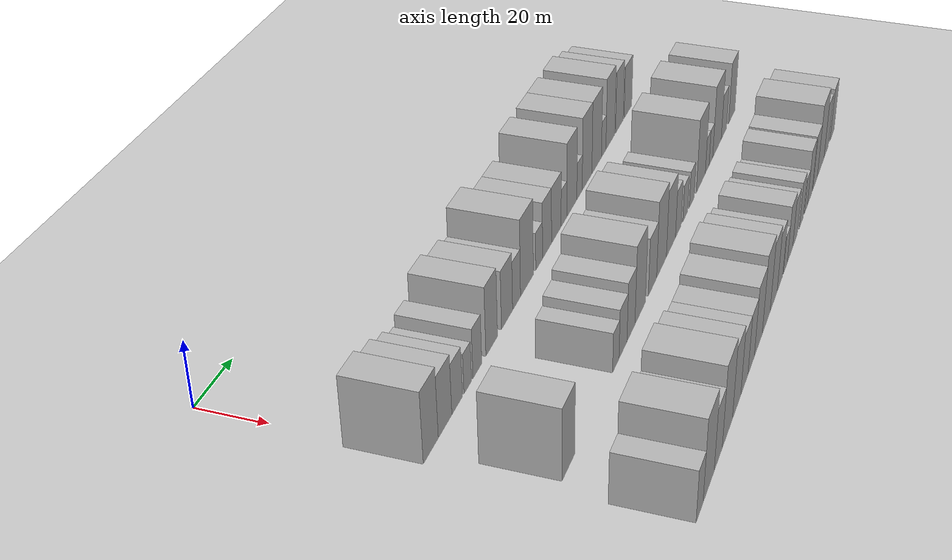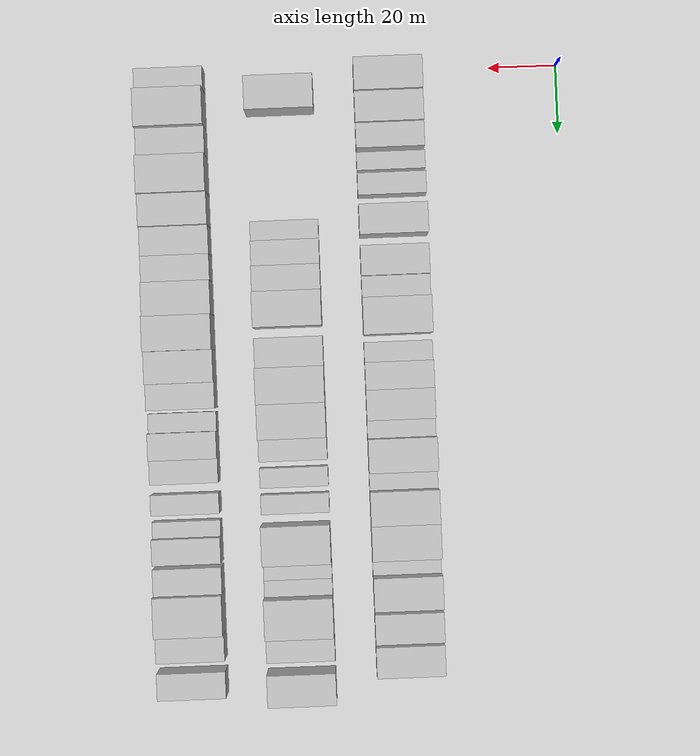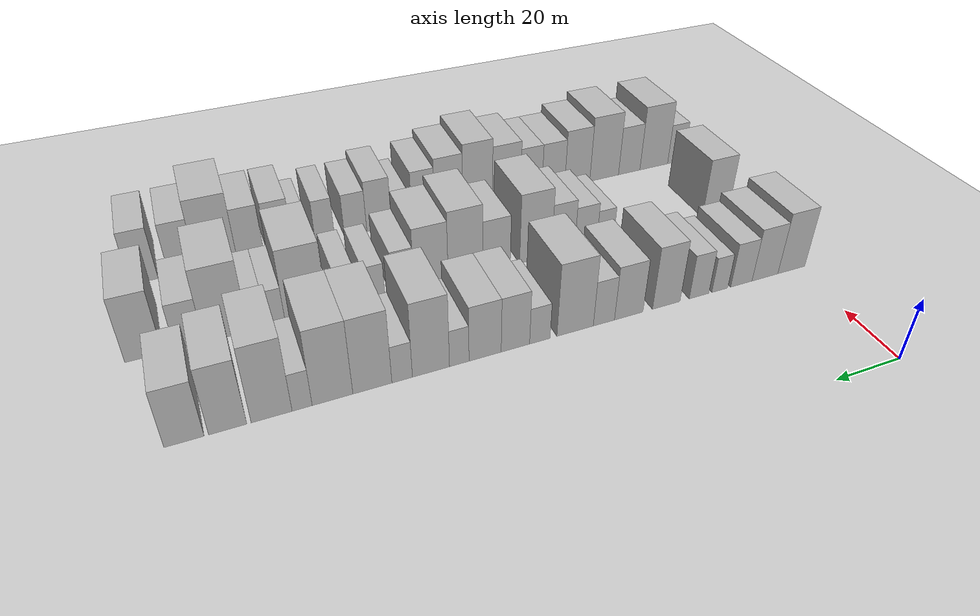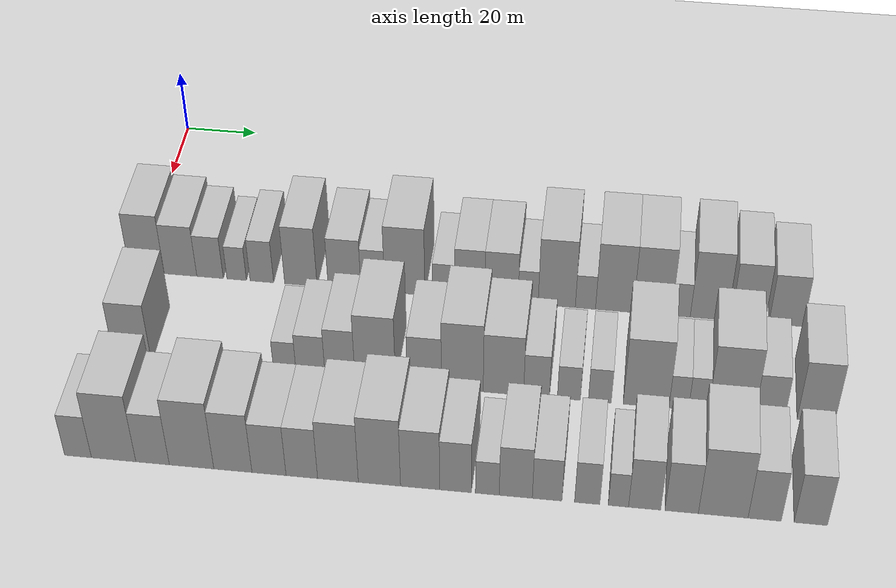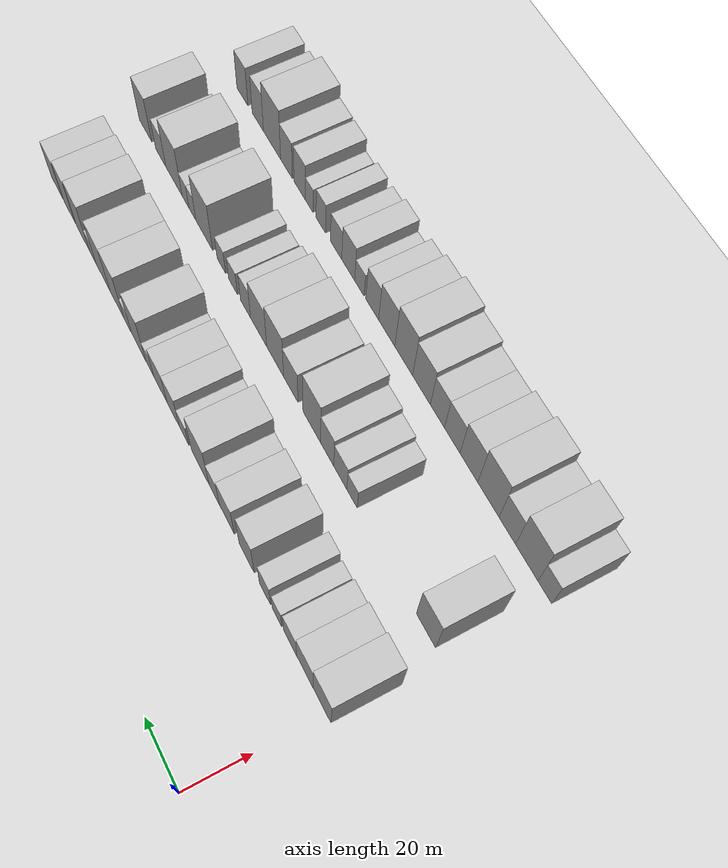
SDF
<sdf version="1.6">
 <world name="default">
  <include>
   <name>ground_plane_2</name>
   <uri>model://HANNAS_ground_plane</uri>
   <pose>100 0 0  0 0 0</pose>
  </include>
  <model name="building_40">
   <static>1</static>
   <pose>50.0000 2.4030 0 0.000000 0.000000 0.000000</pose>
   <link name="link">
    <pose>0 0 10.50 0 0 0</pose>
    <collision name="collision"><geometry><box><size>20.0000 9.5587 21.0000</size></box></geometry></collision>
    <visual name="visual">
     <cast_shadows>0</cast_shadows>
     <geometry><box><size>20.0000 9.5587 21.0000</size></box></geometry>
     <material>
      <script>
       <uri>model://HANNAS_wall/materials/scripts</uri>
       <uri>model://HANNAS_wall/materials/textures</uri>
       <name>vrc/HANNAS_wall</name>
      </script>
     </material>
    </visual>
   </link>
  </model>
  <model name="building_41">
   <static>1</static>
   <pose>50.0000 11.6549 0 0.000000 0.000000 0.000000</pose>
   <link name="link">
    <pose>0 0 9.00 0 0 0</pose>
    <collision name="collision"><geometry><box><size>20.0000 8.9450 18.0000</size></box></geometry></collision>
    <visual name="visual">
     <cast_shadows>0</cast_shadows>
     <geometry><box><size>20.0000 8.9450 18.0000</size></box></geometry>
     <material>
      <script>
       <uri>model://HANNAS_wall/materials/scripts</uri>
       <uri>model://HANNAS_wall/materials/textures</uri>
       <name>vrc/HANNAS_wall</name>
      </script>
     </material>
    </visual>
   </link>
  </model>
  <model name="building_42">
   <static>1</static>
   <pose>50.0000 19.7521 0 0.000000 0.000000 0.000000</pose>
   <link name="link">
    <pose>0 0 7.50 0 0 0</pose>
    <collision name="collision"><geometry><box><size>20.0000 7.2494 15.0000</size></box></geometry></collision>
    <visual name="visual">
     <cast_shadows>0</cast_shadows>
     <geometry><box><size>20.0000 7.2494 15.0000</size></box></geometry>
     <material>
      <script>
       <uri>model://HANNAS_wall/materials/scripts</uri>
       <uri>model://HANNAS_wall/materials/textures</uri>
       <name>vrc/HANNAS_wall</name>
      </script>
     </material>
    </visual>
   </link>
  </model>
  <model name="building_43">
   <static>1</static>
   <pose>50.0000 27.0330 0 0.000000 0.000000 0.000000</pose>
   <link name="link">
    <pose>0 0 6.00 0 0 0</pose>
    <collision name="collision"><geometry><box><size>20.0000 5.3125 12.0000</size></box></geometry></collision>
    <visual name="visual">
     <cast_shadows>0</cast_shadows>
     <geometry><box><size>20.0000 5.3125 12.0000</size></box></geometry>
     <material>
      <script>
       <uri>model://HANNAS_wall/materials/scripts</uri>
       <uri>model://HANNAS_wall/materials/textures</uri>
       <name>vrc/HANNAS_wall</name>
      </script>
     </material>
    </visual>
   </link>
  </model>
  <model name="building_44">
   <static>1</static>
   <pose>50.0000 33.8984 0 0.000000 0.000000 0.000000</pose>
   <link name="link">
    <pose>0 0 7.50 0 0 0</pose>
    <collision name="collision"><geometry><box><size>20.0000 6.4183 15.0000</size></box></geometry></collision>
    <visual name="visual">
     <cast_shadows>0</cast_shadows>
     <geometry><box><size>20.0000 6.4183 15.0000</size></box></geometry>
     <material>
      <script>
       <uri>model://HANNAS_wall/materials/scripts</uri>
       <uri>model://HANNAS_wall/materials/textures</uri>
       <name>vrc/HANNAS_wall</name>
      </script>
     </material>
    </visual>
   </link>
  </model>
  <model name="building_45">
   <static>1</static>
   <pose>50.0000 44.5036 0 0.000000 0.000000 0.000000</pose>
   <link name="link">
    <pose>0 0 10.50 0 0 0</pose>
    <collision name="collision"><geometry><box><size>20.0000 8.7922 21.0000</size></box></geometry></collision>
    <visual name="visual">
     <cast_shadows>0</cast_shadows>
     <geometry><box><size>20.0000 8.7922 21.0000</size></box></geometry>
     <material>
      <script>
       <uri>model://HANNAS_wall/materials/scripts</uri>
       <uri>model://HANNAS_wall/materials/textures</uri>
       <name>vrc/HANNAS_wall</name>
      </script>
     </material>
    </visual>
   </link>
  </model>
  <model name="building_46">
   <static>1</static>
   <pose>50.0000 56.3136 0 0.000000 0.000000 0.000000</pose>
   <link name="link">
    <pose>0 0 9.00 0 0 0</pose>
    <collision name="collision"><geometry><box><size>20.0000 8.8278 18.0000</size></box></geometry></collision>
    <visual name="visual">
     <cast_shadows>0</cast_shadows>
     <geometry><box><size>20.0000 8.8278 18.0000</size></box></geometry>
     <material>
      <script>
       <uri>model://HANNAS_wall/materials/scripts</uri>
       <uri>model://HANNAS_wall/materials/textures</uri>
       <name>vrc/HANNAS_wall</name>
      </script>
     </material>
    </visual>
   </link>
  </model>
  <model name="building_47">
   <static>1</static>
   <pose>50.0000 63.9423 0 0.000000 0.000000 0.000000</pose>
   <link name="link">
    <pose>0 0 7.50 0 0 0</pose>
    <collision name="collision"><geometry><box><size>20.0000 6.4296 15.0000</size></box></geometry></collision>
    <visual name="visual">
     <cast_shadows>0</cast_shadows>
     <geometry><box><size>20.0000 6.4296 15.0000</size></box></geometry>
     <material>
      <script>
       <uri>model://HANNAS_wall/materials/scripts</uri>
       <uri>model://HANNAS_wall/materials/textures</uri>
       <name>vrc/HANNAS_wall</name>
      </script>
     </material>
    </visual>
   </link>
  </model>
  <model name="building_48">
   <static>1</static>
   <pose>50.0000 72.5558 0 0.000000 0.000000 0.000000</pose>
   <link name="link">
    <pose>0 0 12.00 0 0 0</pose>
    <collision name="collision"><geometry><box><size>20.0000 10.7972 24.0000</size></box></geometry></collision>
    <visual name="visual">
     <cast_shadows>0</cast_shadows>
     <geometry><box><size>20.0000 10.7972 24.0000</size></box></geometry>
     <material>
      <script>
       <uri>model://HANNAS_wall/materials/scripts</uri>
       <uri>model://HANNAS_wall/materials/textures</uri>
       <name>vrc/HANNAS_wall</name>
      </script>
     </material>
    </visual>
   </link>
  </model>
  <model name="building_49">
   <static>1</static>
   <pose>50.0000 82.9125 0 0.000000 0.000000 0.000000</pose>
   <link name="link">
    <pose>0 0 6.00 0 0 0</pose>
    <collision name="collision"><geometry><box><size>20.0000 5.9161 12.0000</size></box></geometry></collision>
    <visual name="visual">
     <cast_shadows>0</cast_shadows>
     <geometry><box><size>20.0000 5.9161 12.0000</size></box></geometry>
     <material>
      <script>
       <uri>model://HANNAS_wall/materials/scripts</uri>
       <uri>model://HANNAS_wall/materials/textures</uri>
       <name>vrc/HANNAS_wall</name>
      </script>
     </material>
    </visual>
   </link>
  </model>
  <model name="building_50">
   <static>1</static>
   <pose>50.0000 89.8987 0 0.000000 0.000000 0.000000</pose>
   <link name="link">
    <pose>0 0 9.00 0 0 0</pose>
    <collision name="collision"><geometry><box><size>20.0000 8.0563 18.0000</size></box></geometry></collision>
    <visual name="visual">
     <cast_shadows>0</cast_shadows>
     <geometry><box><size>20.0000 8.0563 18.0000</size></box></geometry>
     <material>
      <script>
       <uri>model://HANNAS_wall/materials/scripts</uri>
       <uri>model://HANNAS_wall/materials/textures</uri>
       <name>vrc/HANNAS_wall</name>
      </script>
     </material>
    </visual>
   </link>
  </model>
  <model name="building_51">
   <static>1</static>
   <pose>50.0000 98.3736 0 0.000000 0.000000 0.000000</pose>
   <link name="link">
    <pose>0 0 9.00 0 0 0</pose>
    <collision name="collision"><geometry><box><size>20.0000 8.8935 18.0000</size></box></geometry></collision>
    <visual name="visual">
     <cast_shadows>0</cast_shadows>
     <geometry><box><size>20.0000 8.8935 18.0000</size></box></geometry>
     <material>
      <script>
       <uri>model://HANNAS_wall/materials/scripts</uri>
       <uri>model://HANNAS_wall/materials/textures</uri>
       <name>vrc/HANNAS_wall</name>
      </script>
     </material>
    </visual>
   </link>
  </model>
  <model name="building_52">
   <static>1</static>
   <pose>50.0000 105.4700 0 0.000000 0.000000 0.000000</pose>
   <link name="link">
    <pose>0 0 6.00 0 0 0</pose>
    <collision name="collision"><geometry><box><size>20.0000 5.2992 12.0000</size></box></geometry></collision>
    <visual name="visual">
     <cast_shadows>0</cast_shadows>
     <geometry><box><size>20.0000 5.2992 12.0000</size></box></geometry>
     <material>
      <script>
       <uri>model://HANNAS_wall/materials/scripts</uri>
       <uri>model://HANNAS_wall/materials/textures</uri>
       <name>vrc/HANNAS_wall</name>
      </script>
     </material>
    </visual>
   </link>
  </model>
  <model name="building_53">
   <static>1</static>
   <pose>50.0000 113.0451 0 0.000000 0.000000 0.000000</pose>
   <link name="link">
    <pose>0 0 12.00 0 0 0</pose>
    <collision name="collision"><geometry><box><size>20.0000 9.8510 24.0000</size></box></geometry></collision>
    <visual name="visual">
     <cast_shadows>0</cast_shadows>
     <geometry><box><size>20.0000 9.8510 24.0000</size></box></geometry>
     <material>
      <script>
       <uri>model://HANNAS_wall/materials/scripts</uri>
       <uri>model://HANNAS_wall/materials/textures</uri>
       <name>vrc/HANNAS_wall</name>
      </script>
     </material>
    </visual>
   </link>
  </model>
  <model name="building_54">
   <static>1</static>
   <pose>50.0000 120.6383 0 0.000000 0.000000 0.000000</pose>
   <link name="link">
    <pose>0 0 6.00 0 0 0</pose>
    <collision name="collision"><geometry><box><size>20.0000 5.3354 12.0000</size></box></geometry></collision>
    <visual name="visual">
     <cast_shadows>0</cast_shadows>
     <geometry><box><size>20.0000 5.3354 12.0000</size></box></geometry>
     <material>
      <script>
       <uri>model://HANNAS_wall/materials/scripts</uri>
       <uri>model://HANNAS_wall/materials/textures</uri>
       <name>vrc/HANNAS_wall</name>
      </script>
     </material>
    </visual>
   </link>
  </model>
  <model name="building_55">
   <static>1</static>
   <pose>50.0000 128.2772 0 0.000000 0.000000 0.000000</pose>
   <link name="link">
    <pose>0 0 12.00 0 0 0</pose>
    <collision name="collision"><geometry><box><size>20.0000 9.9423 24.0000</size></box></geometry></collision>
    <visual name="visual">
     <cast_shadows>0</cast_shadows>
     <geometry><box><size>20.0000 9.9423 24.0000</size></box></geometry>
     <material>
      <script>
       <uri>model://HANNAS_wall/materials/scripts</uri>
       <uri>model://HANNAS_wall/materials/textures</uri>
       <name>vrc/HANNAS_wall</name>
      </script>
     </material>
    </visual>
   </link>
  </model>
  <model name="building_56">
   <static>1</static>
   <pose>50.0000 138.2839 0 0.000000 0.000000 0.000000</pose>
   <link name="link">
    <pose>0 0 12.00 0 0 0</pose>
    <collision name="collision"><geometry><box><size>20.0000 10.0712 24.0000</size></box></geometry></collision>
    <visual name="visual">
     <cast_shadows>0</cast_shadows>
     <geometry><box><size>20.0000 10.0712 24.0000</size></box></geometry>
     <material>
      <script>
       <uri>model://HANNAS_wall/materials/scripts</uri>
       <uri>model://HANNAS_wall/materials/textures</uri>
       <name>vrc/HANNAS_wall</name>
      </script>
     </material>
    </visual>
   </link>
  </model>
  <model name="building_57">
   <static>1</static>
   <pose>50.0000 145.7459 0 0.000000 0.000000 0.000000</pose>
   <link name="link">
    <pose>0 0 6.00 0 0 0</pose>
    <collision name="collision"><geometry><box><size>20.0000 4.8527 12.0000</size></box></geometry></collision>
    <visual name="visual">
     <cast_shadows>0</cast_shadows>
     <geometry><box><size>20.0000 4.8527 12.0000</size></box></geometry>
     <material>
      <script>
       <uri>model://HANNAS_wall/materials/scripts</uri>
       <uri>model://HANNAS_wall/materials/textures</uri>
       <name>vrc/HANNAS_wall</name>
      </script>
     </material>
    </visual>
   </link>
  </model>
  <model name="building_58">
   <static>1</static>
   <pose>50.0000 153.0275 0 0.000000 0.000000 0.000000</pose>
   <link name="link">
    <pose>0 0 12.00 0 0 0</pose>
    <collision name="collision"><geometry><box><size>20.0000 9.7106 24.0000</size></box></geometry></collision>
    <visual name="visual">
     <cast_shadows>0</cast_shadows>
     <geometry><box><size>20.0000 9.7106 24.0000</size></box></geometry>
     <material>
      <script>
       <uri>model://HANNAS_wall/materials/scripts</uri>
       <uri>model://HANNAS_wall/materials/textures</uri>
       <name>vrc/HANNAS_wall</name>
      </script>
     </material>
    </visual>
   </link>
  </model>
  <model name="building_59">
   <static>1</static>
   <pose>50.0000 163.2821 0 0.000000 0.000000 0.000000</pose>
   <link name="link">
    <pose>0 0 10.50 0 0 0</pose>
    <collision name="collision"><geometry><box><size>20.0000 8.7987 21.0000</size></box></geometry></collision>
    <visual name="visual">
     <cast_shadows>0</cast_shadows>
     <geometry><box><size>20.0000 8.7987 21.0000</size></box></geometry>
     <material>
      <script>
       <uri>model://HANNAS_wall/materials/scripts</uri>
       <uri>model://HANNAS_wall/materials/textures</uri>
       <name>vrc/HANNAS_wall</name>
      </script>
     </material>
    </visual>
   </link>
  </model>
  <model name="building_60">
   <static>1</static>
   <pose>50.0000 173.1766 0 0.000000 0.000000 0.000000</pose>
   <link name="link">
    <pose>0 0 9.00 0 0 0</pose>
    <collision name="collision"><geometry><box><size>20.0000 8.9902 18.0000</size></box></geometry></collision>
    <visual name="visual">
     <cast_shadows>0</cast_shadows>
     <geometry><box><size>20.0000 8.9902 18.0000</size></box></geometry>
     <material>
      <script>
       <uri>model://HANNAS_wall/materials/scripts</uri>
       <uri>model://HANNAS_wall/materials/textures</uri>
       <name>vrc/HANNAS_wall</name>
      </script>
     </material>
    </visual>
   </link>
  </model>
  <model name="building_123">
   <static>1</static>
   <pose>82.0000 6.6383 0 0.000000 0.000000 0.000000</pose>
   <link name="link">
    <pose>0 0 10.50 0 0 0</pose>
    <collision name="collision"><geometry><box><size>20.0000 9.8185 21.0000</size></box></geometry></collision>
    <visual name="visual">
     <cast_shadows>0</cast_shadows>
     <geometry><box><size>20.0000 9.8185 21.0000</size></box></geometry>
     <material>
      <script>
       <uri>model://HANNAS_wall/materials/scripts</uri>
       <uri>model://HANNAS_wall/materials/textures</uri>
       <name>vrc/HANNAS_wall</name>
      </script>
     </material>
    </visual>
   </link>
  </model>
  <model name="building_124">
   <static>1</static>
   <pose>82.0000 46.2469 0 0.000000 0.000000 0.000000</pose>
   <link name="link">
    <pose>0 0 6.00 0 0 0</pose>
    <collision name="collision"><geometry><box><size>20.0000 5.7996 12.0000</size></box></geometry></collision>
    <visual name="visual">
     <cast_shadows>0</cast_shadows>
     <geometry><box><size>20.0000 5.7996 12.0000</size></box></geometry>
     <material>
      <script>
       <uri>model://HANNAS_wall/materials/scripts</uri>
       <uri>model://HANNAS_wall/materials/textures</uri>
       <name>vrc/HANNAS_wall</name>
      </script>
     </material>
    </visual>
   </link>
  </model>
  <model name="building_125">
   <static>1</static>
   <pose>82.0000 52.8648 0 0.000000 0.000000 0.000000</pose>
   <link name="link">
    <pose>0 0 7.50 0 0 0</pose>
    <collision name="collision"><geometry><box><size>20.0000 7.4362 15.0000</size></box></geometry></collision>
    <visual name="visual">
     <cast_shadows>0</cast_shadows>
     <geometry><box><size>20.0000 7.4362 15.0000</size></box></geometry>
     <material>
      <script>
       <uri>model://HANNAS_wall/materials/scripts</uri>
       <uri>model://HANNAS_wall/materials/textures</uri>
       <name>vrc/HANNAS_wall</name>
      </script>
     </material>
    </visual>
   </link>
  </model>
  <model name="building_126">
   <static>1</static>
   <pose>82.0000 60.4144 0 0.000000 0.000000 0.000000</pose>
   <link name="link">
    <pose>0 0 9.00 0 0 0</pose>
    <collision name="collision"><geometry><box><size>20.0000 7.6631 18.0000</size></box></geometry></collision>
    <visual name="visual">
     <cast_shadows>0</cast_shadows>
     <geometry><box><size>20.0000 7.6631 18.0000</size></box></geometry>
     <material>
      <script>
       <uri>model://HANNAS_wall/materials/scripts</uri>
       <uri>model://HANNAS_wall/materials/textures</uri>
       <name>vrc/HANNAS_wall</name>
      </script>
     </material>
    </visual>
   </link>
  </model>
  <model name="building_127">
   <static>1</static>
   <pose>82.0000 69.4256 0 0.000000 0.000000 0.000000</pose>
   <link name="link">
    <pose>0 0 12.00 0 0 0</pose>
    <collision name="collision"><geometry><box><size>20.0000 10.3593 24.0000</size></box></geometry></collision>
    <visual name="visual">
     <cast_shadows>0</cast_shadows>
     <geometry><box><size>20.0000 10.3593 24.0000</size></box></geometry>
     <material>
      <script>
       <uri>model://HANNAS_wall/materials/scripts</uri>
       <uri>model://HANNAS_wall/materials/textures</uri>
       <name>vrc/HANNAS_wall</name>
      </script>
     </material>
    </visual>
   </link>
  </model>
  <model name="building_128">
   <static>1</static>
   <pose>82.0000 81.9471 0 0.000000 0.000000 0.000000</pose>
   <link name="link">
    <pose>0 0 9.00 0 0 0</pose>
    <collision name="collision"><geometry><box><size>20.0000 8.6836 18.0000</size></box></geometry></collision>
    <visual name="visual">
     <cast_shadows>0</cast_shadows>
     <geometry><box><size>20.0000 8.6836 18.0000</size></box></geometry>
     <material>
      <script>
       <uri>model://HANNAS_wall/materials/scripts</uri>
       <uri>model://HANNAS_wall/materials/textures</uri>
       <name>vrc/HANNAS_wall</name>
      </script>
     </material>
    </visual>
   </link>
  </model>
  <model name="building_129">
   <static>1</static>
   <pose>82.0000 91.5735 0 0.000000 0.000000 0.000000</pose>
   <link name="link">
    <pose>0 0 12.00 0 0 0</pose>
    <collision name="collision"><geometry><box><size>20.0000 10.5692 24.0000</size></box></geometry></collision>
    <visual name="visual">
     <cast_shadows>0</cast_shadows>
     <geometry><box><size>20.0000 10.5692 24.0000</size></box></geometry>
     <material>
      <script>
       <uri>model://HANNAS_wall/materials/scripts</uri>
       <uri>model://HANNAS_wall/materials/textures</uri>
       <name>vrc/HANNAS_wall</name>
      </script>
     </material>
    </visual>
   </link>
  </model>
  <model name="building_130">
   <static>1</static>
   <pose>82.0000 101.9726 0 0.000000 0.000000 0.000000</pose>
   <link name="link">
    <pose>0 0 10.50 0 0 0</pose>
    <collision name="collision"><geometry><box><size>20.0000 10.2291 21.0000</size></box></geometry></collision>
    <visual name="visual">
     <cast_shadows>0</cast_shadows>
     <geometry><box><size>20.0000 10.2291 21.0000</size></box></geometry>
     <material>
      <script>
       <uri>model://HANNAS_wall/materials/scripts</uri>
       <uri>model://HANNAS_wall/materials/textures</uri>
       <name>vrc/HANNAS_wall</name>
      </script>
     </material>
    </visual>
   </link>
  </model>
  <model name="building_131">
   <static>1</static>
   <pose>82.0000 110.3439 0 0.000000 0.000000 0.000000</pose>
   <link name="link">
    <pose>0 0 7.50 0 0 0</pose>
    <collision name="collision"><geometry><box><size>20.0000 6.5135 15.0000</size></box></geometry></collision>
    <visual name="visual">
     <cast_shadows>0</cast_shadows>
     <geometry><box><size>20.0000 6.5135 15.0000</size></box></geometry>
     <material>
      <script>
       <uri>model://HANNAS_wall/materials/scripts</uri>
       <uri>model://HANNAS_wall/materials/textures</uri>
       <name>vrc/HANNAS_wall</name>
      </script>
     </material>
    </visual>
   </link>
  </model>
  <model name="building_132">
   <static>1</static>
   <pose>82.0000 118.4934 0 0.000000 0.000000 0.000000</pose>
   <link name="link">
    <pose>0 0 6.00 0 0 0</pose>
    <collision name="collision"><geometry><box><size>20.0000 5.7856 12.0000</size></box></geometry></collision>
    <visual name="visual">
     <cast_shadows>0</cast_shadows>
     <geometry><box><size>20.0000 5.7856 12.0000</size></box></geometry>
     <material>
      <script>
       <uri>model://HANNAS_wall/materials/scripts</uri>
       <uri>model://HANNAS_wall/materials/textures</uri>
       <name>vrc/HANNAS_wall</name>
      </script>
     </material>
    </visual>
   </link>
  </model>
  <model name="building_133">
   <static>1</static>
   <pose>82.0000 126.2512 0 0.000000 0.000000 0.000000</pose>
   <link name="link">
    <pose>0 0 6.00 0 0 0</pose>
    <collision name="collision"><geometry><box><size>20.0000 5.7299 12.0000</size></box></geometry></collision>
    <visual name="visual">
     <cast_shadows>0</cast_shadows>
     <geometry><box><size>20.0000 5.7299 12.0000</size></box></geometry>
     <material>
      <script>
       <uri>model://HANNAS_wall/materials/scripts</uri>
       <uri>model://HANNAS_wall/materials/textures</uri>
       <name>vrc/HANNAS_wall</name>
      </script>
     </material>
    </visual>
   </link>
  </model>
  <model name="building_134">
   <static>1</static>
   <pose>82.0000 137.8178 0 0.000000 0.000000 0.000000</pose>
   <link name="link">
    <pose>0 0 12.00 0 0 0</pose>
    <collision name="collision"><geometry><box><size>20.0000 11.4035 24.0000</size></box></geometry></collision>
    <visual name="visual">
     <cast_shadows>0</cast_shadows>
     <geometry><box><size>20.0000 11.4035 24.0000</size></box></geometry>
     <material>
      <script>
       <uri>model://HANNAS_wall/materials/scripts</uri>
       <uri>model://HANNAS_wall/materials/textures</uri>
       <name>vrc/HANNAS_wall</name>
      </script>
     </material>
    </visual>
   </link>
  </model>
  <model name="building_135">
   <static>1</static>
   <pose>82.0000 145.9608 0 0.000000 0.000000 0.000000</pose>
   <link name="link">
    <pose>0 0 6.00 0 0 0</pose>
    <collision name="collision"><geometry><box><size>20.0000 4.8825 12.0000</size></box></geometry></collision>
    <visual name="visual">
     <cast_shadows>0</cast_shadows>
     <geometry><box><size>20.0000 4.8825 12.0000</size></box></geometry>
     <material>
      <script>
       <uri>model://HANNAS_wall/materials/scripts</uri>
       <uri>model://HANNAS_wall/materials/textures</uri>
       <name>vrc/HANNAS_wall</name>
      </script>
     </material>
    </visual>
   </link>
  </model>
  <model name="building_136">
   <static>1</static>
   <pose>82.0000 150.8402 0 0.000000 0.000000 0.000000</pose>
   <link name="link">
    <pose>0 0 6.00 0 0 0</pose>
    <collision name="collision"><geometry><box><size>20.0000 4.8762 12.0000</size></box></geometry></collision>
    <visual name="visual">
     <cast_shadows>0</cast_shadows>
     <geometry><box><size>20.0000 4.8762 12.0000</size></box></geometry>
     <material>
      <script>
       <uri>model://HANNAS_wall/materials/scripts</uri>
       <uri>model://HANNAS_wall/materials/textures</uri>
       <name>vrc/HANNAS_wall</name>
      </script>
     </material>
    </visual>
   </link>
  </model>
  <model name="building_137">
   <static>1</static>
   <pose>82.0000 159.0814 0 0.000000 0.000000 0.000000</pose>
   <link name="link">
    <pose>0 0 12.00 0 0 0</pose>
    <collision name="collision"><geometry><box><size>20.0000 11.6063 24.0000</size></box></geometry></collision>
    <visual name="visual">
     <cast_shadows>0</cast_shadows>
     <geometry><box><size>20.0000 11.6063 24.0000</size></box></geometry>
     <material>
      <script>
       <uri>model://HANNAS_wall/materials/scripts</uri>
       <uri>model://HANNAS_wall/materials/textures</uri>
       <name>vrc/HANNAS_wall</name>
      </script>
     </material>
    </visual>
   </link>
  </model>
  <model name="building_138">
   <static>1</static>
   <pose>82.0000 168.5644 0 0.000000 0.000000 0.000000</pose>
   <link name="link">
    <pose>0 0 7.50 0 0 0</pose>
    <collision name="collision"><geometry><box><size>20.0000 7.3597 15.0000</size></box></geometry></collision>
    <visual name="visual">
     <cast_shadows>0</cast_shadows>
     <geometry><box><size>20.0000 7.3597 15.0000</size></box></geometry>
     <material>
      <script>
       <uri>model://HANNAS_wall/materials/scripts</uri>
       <uri>model://HANNAS_wall/materials/textures</uri>
       <name>vrc/HANNAS_wall</name>
      </script>
     </material>
    </visual>
   </link>
  </model>
  <model name="building_139">
   <static>1</static>
   <pose>82.0000 179.8732 0 0.000000 0.000000 0.000000</pose>
   <link name="link">
    <pose>0 0 10.50 0 0 0</pose>
    <collision name="collision"><geometry><box><size>20.0000 9.2580 21.0000</size></box></geometry></collision>
    <visual name="visual">
     <cast_shadows>0</cast_shadows>
     <geometry><box><size>20.0000 9.2580 21.0000</size></box></geometry>
     <material>
      <script>
       <uri>model://HANNAS_wall/materials/scripts</uri>
       <uri>model://HANNAS_wall/materials/textures</uri>
       <name>vrc/HANNAS_wall</name>
      </script>
     </material>
    </visual>
   </link>
  </model>
  <model name="building_196">
   <static>1</static>
   <pose>114.0000 1.0708 0 0.000000 0.000000 0.000000</pose>
   <link name="link">
    <pose>0 0 7.50 0 0 0</pose>
    <collision name="collision"><geometry><box><size>20.0000 6.6942 15.0000</size></box></geometry></collision>
    <visual name="visual">
     <cast_shadows>0</cast_shadows>
     <geometry><box><size>20.0000 6.6942 15.0000</size></box></geometry>
     <material>
      <script>
       <uri>model://HANNAS_wall/materials/scripts</uri>
       <uri>model://HANNAS_wall/materials/textures</uri>
       <name>vrc/HANNAS_wall</name>
      </script>
     </material>
    </visual>
   </link>
  </model>
  <model name="building_197">
   <static>1</static>
   <pose>114.0000 9.9301 0 0.000000 0.000000 0.000000</pose>
   <link name="link">
    <pose>0 0 12.00 0 0 0</pose>
    <collision name="collision"><geometry><box><size>20.0000 11.0244 24.0000</size></box></geometry></collision>
    <visual name="visual">
     <cast_shadows>0</cast_shadows>
     <geometry><box><size>20.0000 11.0244 24.0000</size></box></geometry>
     <material>
      <script>
       <uri>model://HANNAS_wall/materials/scripts</uri>
       <uri>model://HANNAS_wall/materials/textures</uri>
       <name>vrc/HANNAS_wall</name>
      </script>
     </material>
    </visual>
   </link>
  </model>
  <model name="building_198">
   <static>1</static>
   <pose>114.0000 19.5961 0 0.000000 0.000000 0.000000</pose>
   <link name="link">
    <pose>0 0 9.00 0 0 0</pose>
    <collision name="collision"><geometry><box><size>20.0000 8.3076 18.0000</size></box></geometry></collision>
    <visual name="visual">
     <cast_shadows>0</cast_shadows>
     <geometry><box><size>20.0000 8.3076 18.0000</size></box></geometry>
     <material>
      <script>
       <uri>model://HANNAS_wall/materials/scripts</uri>
       <uri>model://HANNAS_wall/materials/textures</uri>
       <name>vrc/HANNAS_wall</name>
      </script>
     </material>
    </visual>
   </link>
  </model>
  <model name="building_199">
   <static>1</static>
   <pose>114.0000 29.2395 0 0.000000 0.000000 0.000000</pose>
   <link name="link">
    <pose>0 0 12.00 0 0 0</pose>
    <collision name="collision"><geometry><box><size>20.0000 10.9791 24.0000</size></box></geometry></collision>
    <visual name="visual">
     <cast_shadows>0</cast_shadows>
     <geometry><box><size>20.0000 10.9791 24.0000</size></box></geometry>
     <material>
      <script>
       <uri>model://HANNAS_wall/materials/scripts</uri>
       <uri>model://HANNAS_wall/materials/textures</uri>
       <name>vrc/HANNAS_wall</name>
      </script>
     </material>
    </visual>
   </link>
  </model>
  <model name="building_200">
   <static>1</static>
   <pose>114.0000 39.4237 0 0.000000 0.000000 0.000000</pose>
   <link name="link">
    <pose>0 0 10.50 0 0 0</pose>
    <collision name="collision"><geometry><box><size>20.0000 9.3893 21.0000</size></box></geometry></collision>
    <visual name="visual">
     <cast_shadows>0</cast_shadows>
     <geometry><box><size>20.0000 9.3893 21.0000</size></box></geometry>
     <material>
      <script>
       <uri>model://HANNAS_wall/materials/scripts</uri>
       <uri>model://HANNAS_wall/materials/textures</uri>
       <name>vrc/HANNAS_wall</name>
      </script>
     </material>
    </visual>
   </link>
  </model>
  <model name="building_201">
   <static>1</static>
   <pose>114.0000 48.2946 0 0.000000 0.000000 0.000000</pose>
   <link name="link">
    <pose>0 0 9.00 0 0 0</pose>
    <collision name="collision"><geometry><box><size>20.0000 8.3523 18.0000</size></box></geometry></collision>
    <visual name="visual">
     <cast_shadows>0</cast_shadows>
     <geometry><box><size>20.0000 8.3523 18.0000</size></box></geometry>
     <material>
      <script>
       <uri>model://HANNAS_wall/materials/scripts</uri>
       <uri>model://HANNAS_wall/materials/textures</uri>
       <name>vrc/HANNAS_wall</name>
      </script>
     </material>
    </visual>
   </link>
  </model>
  <model name="building_202">
   <static>1</static>
   <pose>114.0000 56.3234 0 0.000000 0.000000 0.000000</pose>
   <link name="link">
    <pose>0 0 9.00 0 0 0</pose>
    <collision name="collision"><geometry><box><size>20.0000 7.7054 18.0000</size></box></geometry></collision>
    <visual name="visual">
     <cast_shadows>0</cast_shadows>
     <geometry><box><size>20.0000 7.7054 18.0000</size></box></geometry>
     <material>
      <script>
       <uri>model://HANNAS_wall/materials/scripts</uri>
       <uri>model://HANNAS_wall/materials/textures</uri>
       <name>vrc/HANNAS_wall</name>
      </script>
     </material>
    </visual>
   </link>
  </model>
  <model name="building_203">
   <static>1</static>
   <pose>114.0000 65.1307 0 0.000000 0.000000 0.000000</pose>
   <link name="link">
    <pose>0 0 10.50 0 0 0</pose>
    <collision name="collision"><geometry><box><size>20.0000 9.9091 21.0000</size></box></geometry></collision>
    <visual name="visual">
     <cast_shadows>0</cast_shadows>
     <geometry><box><size>20.0000 9.9091 21.0000</size></box></geometry>
     <material>
      <script>
       <uri>model://HANNAS_wall/materials/scripts</uri>
       <uri>model://HANNAS_wall/materials/textures</uri>
       <name>vrc/HANNAS_wall</name>
      </script>
     </material>
    </visual>
   </link>
  </model>
  <model name="building_204">
   <static>1</static>
   <pose>114.0000 75.2011 0 0.000000 0.000000 0.000000</pose>
   <link name="link">
    <pose>0 0 12.00 0 0 0</pose>
    <collision name="collision"><geometry><box><size>20.0000 10.2319 24.0000</size></box></geometry></collision>
    <visual name="visual">
     <cast_shadows>0</cast_shadows>
     <geometry><box><size>20.0000 10.2319 24.0000</size></box></geometry>
     <material>
      <script>
       <uri>model://HANNAS_wall/materials/scripts</uri>
       <uri>model://HANNAS_wall/materials/textures</uri>
       <name>vrc/HANNAS_wall</name>
      </script>
     </material>
    </visual>
   </link>
  </model>
  <model name="building_205">
   <static>1</static>
   <pose>114.0000 85.0462 0 0.000000 0.000000 0.000000</pose>
   <link name="link">
    <pose>0 0 10.50 0 0 0</pose>
    <collision name="collision"><geometry><box><size>20.0000 9.4582 21.0000</size></box></geometry></collision>
    <visual name="visual">
     <cast_shadows>0</cast_shadows>
     <geometry><box><size>20.0000 9.4582 21.0000</size></box></geometry>
     <material>
      <script>
       <uri>model://HANNAS_wall/materials/scripts</uri>
       <uri>model://HANNAS_wall/materials/textures</uri>
       <name>vrc/HANNAS_wall</name>
      </script>
     </material>
    </visual>
   </link>
  </model>
  <model name="building_206">
   <static>1</static>
   <pose>114.0000 93.5767 0 0.000000 0.000000 0.000000</pose>
   <link name="link">
    <pose>0 0 9.00 0 0 0</pose>
    <collision name="collision"><geometry><box><size>20.0000 7.6029 18.0000</size></box></geometry></collision>
    <visual name="visual">
     <cast_shadows>0</cast_shadows>
     <geometry><box><size>20.0000 7.6029 18.0000</size></box></geometry>
     <material>
      <script>
       <uri>model://HANNAS_wall/materials/scripts</uri>
       <uri>model://HANNAS_wall/materials/textures</uri>
       <name>vrc/HANNAS_wall</name>
      </script>
     </material>
    </visual>
   </link>
  </model>
  <model name="building_207">
   <static>1</static>
   <pose>114.0000 101.2279 0 0.000000 0.000000 0.000000</pose>
   <link name="link">
    <pose>0 0 6.00 0 0 0</pose>
    <collision name="collision"><geometry><box><size>20.0000 5.6994 12.0000</size></box></geometry></collision>
    <visual name="visual">
     <cast_shadows>0</cast_shadows>
     <geometry><box><size>20.0000 5.6994 12.0000</size></box></geometry>
     <material>
      <script>
       <uri>model://HANNAS_wall/materials/scripts</uri>
       <uri>model://HANNAS_wall/materials/textures</uri>
       <name>vrc/HANNAS_wall</name>
      </script>
     </material>
    </visual>
   </link>
  </model>
  <model name="building_208">
   <static>1</static>
   <pose>114.0000 108.0371 0 0.000000 0.000000 0.000000</pose>
   <link name="link">
    <pose>0 0 9.00 0 0 0</pose>
    <collision name="collision"><geometry><box><size>20.0000 7.9191 18.0000</size></box></geometry></collision>
    <visual name="visual">
     <cast_shadows>0</cast_shadows>
     <geometry><box><size>20.0000 7.9191 18.0000</size></box></geometry>
     <material>
      <script>
       <uri>model://HANNAS_wall/materials/scripts</uri>
       <uri>model://HANNAS_wall/materials/textures</uri>
       <name>vrc/HANNAS_wall</name>
      </script>
     </material>
    </visual>
   </link>
  </model>
  <model name="building_209">
   <static>1</static>
   <pose>114.0000 115.5342 0 0.000000 0.000000 0.000000</pose>
   <link name="link">
    <pose>0 0 7.50 0 0 0</pose>
    <collision name="collision"><geometry><box><size>20.0000 7.0751 15.0000</size></box></geometry></collision>
    <visual name="visual">
     <cast_shadows>0</cast_shadows>
     <geometry><box><size>20.0000 7.0751 15.0000</size></box></geometry>
     <material>
      <script>
       <uri>model://HANNAS_wall/materials/scripts</uri>
       <uri>model://HANNAS_wall/materials/textures</uri>
       <name>vrc/HANNAS_wall</name>
      </script>
     </material>
    </visual>
   </link>
  </model>
  <model name="building_210">
   <static>1</static>
   <pose>114.0000 125.0756 0 0.000000 0.000000 0.000000</pose>
   <link name="link">
    <pose>0 0 7.50 0 0 0</pose>
    <collision name="collision"><geometry><box><size>20.0000 6.0077 15.0000</size></box></geometry></collision>
    <visual name="visual">
     <cast_shadows>0</cast_shadows>
     <geometry><box><size>20.0000 6.0077 15.0000</size></box></geometry>
     <material>
      <script>
       <uri>model://HANNAS_wall/materials/scripts</uri>
       <uri>model://HANNAS_wall/materials/textures</uri>
       <name>vrc/HANNAS_wall</name>
      </script>
     </material>
    </visual>
   </link>
  </model>
  <model name="building_211">
   <static>1</static>
   <pose>114.0000 132.4828 0 0.000000 0.000000 0.000000</pose>
   <link name="link">
    <pose>0 0 6.00 0 0 0</pose>
    <collision name="collision"><geometry><box><size>20.0000 4.8067 12.0000</size></box></geometry></collision>
    <visual name="visual">
     <cast_shadows>0</cast_shadows>
     <geometry><box><size>20.0000 4.8067 12.0000</size></box></geometry>
     <material>
      <script>
       <uri>model://HANNAS_wall/materials/scripts</uri>
       <uri>model://HANNAS_wall/materials/textures</uri>
       <name>vrc/HANNAS_wall</name>
      </script>
     </material>
    </visual>
   </link>
  </model>
  <model name="building_212">
   <static>1</static>
   <pose>114.0000 138.6920 0 0.000000 0.000000 0.000000</pose>
   <link name="link">
    <pose>0 0 9.00 0 0 0</pose>
    <collision name="collision"><geometry><box><size>20.0000 7.6116 18.0000</size></box></geometry></collision>
    <visual name="visual">
     <cast_shadows>0</cast_shadows>
     <geometry><box><size>20.0000 7.6116 18.0000</size></box></geometry>
     <material>
      <script>
       <uri>model://HANNAS_wall/materials/scripts</uri>
       <uri>model://HANNAS_wall/materials/textures</uri>
       <name>vrc/HANNAS_wall</name>
      </script>
     </material>
    </visual>
   </link>
  </model>
  <model name="building_213">
   <static>1</static>
   <pose>114.0000 147.4345 0 0.000000 0.000000 0.000000</pose>
   <link name="link">
    <pose>0 0 9.00 0 0 0</pose>
    <collision name="collision"><geometry><box><size>20.0000 7.8736 18.0000</size></box></geometry></collision>
    <visual name="visual">
     <cast_shadows>0</cast_shadows>
     <geometry><box><size>20.0000 7.8736 18.0000</size></box></geometry>
     <material>
      <script>
       <uri>model://HANNAS_wall/materials/scripts</uri>
       <uri>model://HANNAS_wall/materials/textures</uri>
       <name>vrc/HANNAS_wall</name>
      </script>
     </material>
    </visual>
   </link>
  </model>
  <model name="building_214">
   <static>1</static>
   <pose>114.0000 157.2077 0 0.000000 0.000000 0.000000</pose>
   <link name="link">
    <pose>0 0 12.00 0 0 0</pose>
    <collision name="collision"><geometry><box><size>20.0000 11.6728 24.0000</size></box></geometry></collision>
    <visual name="visual">
     <cast_shadows>0</cast_shadows>
     <geometry><box><size>20.0000 11.6728 24.0000</size></box></geometry>
     <material>
      <script>
       <uri>model://HANNAS_wall/materials/scripts</uri>
       <uri>model://HANNAS_wall/materials/textures</uri>
       <name>vrc/HANNAS_wall</name>
      </script>
     </material>
    </visual>
   </link>
  </model>
  <model name="building_215">
   <static>1</static>
   <pose>114.0000 166.9275 0 0.000000 0.000000 0.000000</pose>
   <link name="link">
    <pose>0 0 9.00 0 0 0</pose>
    <collision name="collision"><geometry><box><size>20.0000 7.7668 18.0000</size></box></geometry></collision>
    <visual name="visual">
     <cast_shadows>0</cast_shadows>
     <geometry><box><size>20.0000 7.7668 18.0000</size></box></geometry>
     <material>
      <script>
       <uri>model://HANNAS_wall/materials/scripts</uri>
       <uri>model://HANNAS_wall/materials/textures</uri>
       <name>vrc/HANNAS_wall</name>
      </script>
     </material>
    </visual>
   </link>
  </model>
  <model name="building_216">
   <static>1</static>
   <pose>114.0000 177.6940 0 0.000000 0.000000 0.000000</pose>
   <link name="link">
    <pose>0 0 9.00 0 0 0</pose>
    <collision name="collision"><geometry><box><size>20.0000 7.7662 18.0000</size></box></geometry></collision>
    <visual name="visual">
     <cast_shadows>0</cast_shadows>
     <geometry><box><size>20.0000 7.7662 18.0000</size></box></geometry>
     <material>
      <script>
       <uri>model://HANNAS_wall/materials/scripts</uri>
       <uri>model://HANNAS_wall/materials/textures</uri>
       <name>vrc/HANNAS_wall</name>
      </script>
     </material>
    </visual>
   </link>
  </model>
 </world>
</sdf>
